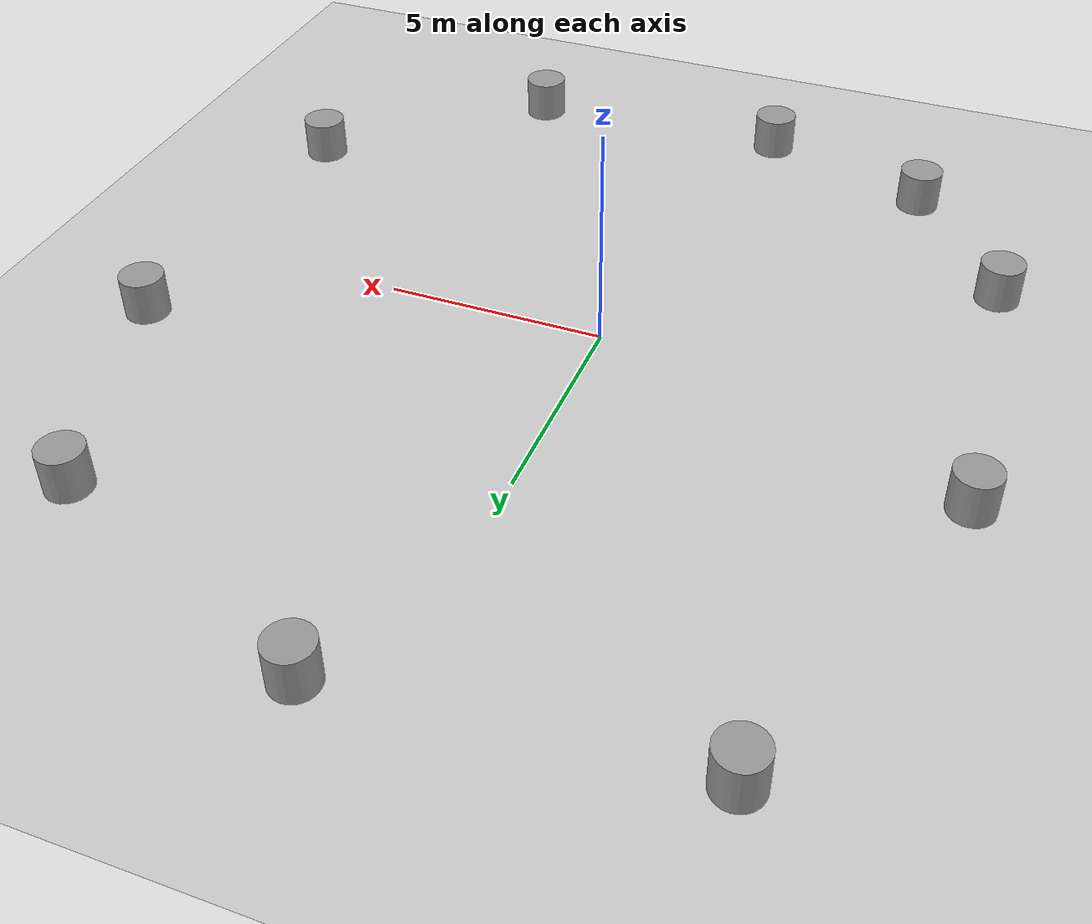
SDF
<sdf version="1.7">
 <world name="default">
  <light name="sun" type="directional">
   <pose>0 0 10 0 -0 0</pose>
   <diffuse>0.8 0.8 0.8 1</diffuse>
   <specular>0.2 0.2 0.2 1</specular>
   <attenuation>
    <range>1000</range>
    <constant>0.9</constant>
    <linear>0.01</linear>
    <quadratic>0.001</quadratic>
   </attenuation>
   <direction>-0.5 0.1 -0.9</direction>
   <spot><inner_angle>0</inner_angle><outer_angle>0</outer_angle><falloff>0</falloff></spot>
  </light>
  <model name="ground_plane">
   <static>1</static>
   <link name="link">
    <collision name="collision">
     <geometry><plane><normal>0 0 1</normal><size>100 100</size></plane></geometry>
     <surface><friction><ode><mu>100</mu><mu2>50</mu2></ode></friction></surface>
    </collision>
    <visual name="visual">
     <cast_shadows>0</cast_shadows>
     <geometry><plane><normal>0 0 1</normal><size>100 100</size></plane></geometry>
     <material>
      <script><uri>file://media/materials/scripts/gazebo.material</uri><name>Gazebo/Grey</name></script>
     </material>
    </visual>
   </link>
  </model>
  <gravity>0 0 -9.8</gravity>
  <magnetic_field>6e-06 2.3e-05 -4.2e-05</magnetic_field>
  <atmosphere type="adiabatic"/>
  <physics type="ode">
   <max_step_size>0.001</max_step_size>
   <real_time_factor>1</real_time_factor>
   <real_time_update_rate>1000</real_time_update_rate>
  </physics>
  <scene><ambient>0.4 0.4 0.4 1</ambient><background>0.7 0.7 0.7 1</background><shadows>1</shadows></scene>
  <spherical_coordinates>
   <surface_model>EARTH_WGS84</surface_model>
   <latitude_deg>0</latitude_deg>
   <longitude_deg>0</longitude_deg>
   <elevation>0</elevation>
   <heading_deg>0</heading_deg>
  </spherical_coordinates>
  <model name="model1.10">
   <link name="link_20">
    <inertial>
     <mass>1</mass>
     <inertia><ixx>0.145833</ixx><ixy>0</ixy><ixz>0</ixz><iyy>0.145833</iyy><iyz>0</iyz><izz>0.125</izz></inertia>
    </inertial>
    <pose>0.435626 9.57933 10 0 -0 0</pose>
    <visual name="visual">
     <geometry><cylinder><radius>0.5</radius><length>1</length></cylinder></geometry>
     <material>
      <lighting>1</lighting>
      <script><uri>file://media/materials/scripts/gazebo.material</uri><name>Gazebo/Grey</name></script>
      <shader type="pixel"><normal_map>__default__</normal_map></shader>
      <ambient>0.3 0.3 0.3 1</ambient>
      <diffuse>0.7 0.7 0.7 1</diffuse>
      <specular>0.01 0.01 0.01 1</specular>
      <emissive>0 0 0 1</emissive>
     </material>
    </visual>
    <collision name="collision">
     <geometry><cylinder><radius>0.5</radius><length>1</length></cylinder></geometry>
     <surface>
      <friction>
       <ode><mu>1</mu><mu2>1</mu2><fdir1>0 0 0</fdir1><slip1>0</slip1><slip2>0</slip2></ode>
       <torsional>
        <coefficient>1</coefficient>
        <patch_radius>0</patch_radius>
        <surface_radius>0</surface_radius>
        <use_patch_radius>1</use_patch_radius>
        <ode><slip>0</slip></ode>
       </torsional>
      </friction>
      <bounce><restitution_coefficient>0</restitution_coefficient><threshold>1e+06</threshold></bounce>
      <contact>
       <collide_without_contact>0</collide_without_contact>
       <collide_without_contact_bitmask>1</collide_without_contact_bitmask>
       <collide_bitmask>1</collide_bitmask>
       <ode>
        <soft_cfm>0</soft_cfm>
        <soft_erp>0.2</soft_erp>
        <kp>1e+13</kp>
        <kd>1</kd>
        <max_vel>0.01</max_vel>
        <min_depth>0</min_depth>
       </ode>
       <bullet>
        <split_impulse>1</split_impulse>
        <split_impulse_penetration_threshold>-0.01</split_impulse_penetration_threshold>
        <soft_cfm>0</soft_cfm>
        <soft_erp>0.2</soft_erp>
        <kp>1e+13</kp>
        <kd>1</kd>
       </bullet>
      </contact>
     </surface>
    </collision>
   </link>
   <static>0</static>
   <pose>1.10007 1.11692 -9.5 -0 -0 -0</pose>
  </model>
  <model name="model1.2">
   <link name="link_3">
    <inertial>
     <mass>1</mass>
     <inertia><ixx>0.145833</ixx><ixy>0</ixy><ixz>0</ixz><iyy>0.145833</iyy><iyz>0</iyz><izz>0.125</izz></inertia>
    </inertial>
    <pose>-6.66073 5.93432 10 0 -0 0</pose>
    <visual name="visual">
     <geometry><cylinder><radius>0.5</radius><length>1</length></cylinder></geometry>
     <material>
      <lighting>1</lighting>
      <script><uri>file://media/materials/scripts/gazebo.material</uri><name>Gazebo/Grey</name></script>
      <shader type="pixel"><normal_map>__default__</normal_map></shader>
      <ambient>0.3 0.3 0.3 1</ambient>
      <diffuse>0.7 0.7 0.7 1</diffuse>
      <specular>0.01 0.01 0.01 1</specular>
      <emissive>0 0 0 1</emissive>
     </material>
    </visual>
    <collision name="collision">
     <geometry><cylinder><radius>0.5</radius><length>1</length></cylinder></geometry>
     <surface>
      <friction>
       <ode><mu>1</mu><mu2>1</mu2><fdir1>0 0 0</fdir1><slip1>0</slip1><slip2>0</slip2></ode>
       <torsional>
        <coefficient>1</coefficient>
        <patch_radius>0</patch_radius>
        <surface_radius>0</surface_radius>
        <use_patch_radius>1</use_patch_radius>
        <ode><slip>0</slip></ode>
       </torsional>
      </friction>
      <bounce><restitution_coefficient>0</restitution_coefficient><threshold>1e+06</threshold></bounce>
      <contact>
       <collide_without_contact>0</collide_without_contact>
       <collide_without_contact_bitmask>1</collide_without_contact_bitmask>
       <collide_bitmask>1</collide_bitmask>
       <ode>
        <soft_cfm>0</soft_cfm>
        <soft_erp>0.2</soft_erp>
        <kp>1e+13</kp>
        <kd>1</kd>
        <max_vel>0.01</max_vel>
        <min_depth>0</min_depth>
       </ode>
       <bullet>
        <split_impulse>1</split_impulse>
        <split_impulse_penetration_threshold>-0.01</split_impulse_penetration_threshold>
        <soft_cfm>0</soft_cfm>
        <soft_erp>0.2</soft_erp>
        <kp>1e+13</kp>
        <kd>1</kd>
       </bullet>
      </contact>
     </surface>
    </collision>
   </link>
   <static>0</static>
   <pose>0.716648 4.12376 -9.5 -0 -0 -0</pose>
  </model>
  <model name="model1.22">
   <link name="link_29">
    <inertial>
     <mass>1</mass>
     <inertia><ixx>0.145833</ixx><ixy>0</ixy><ixz>0</ixz><iyy>0.145833</iyy><iyz>0</iyz><izz>0.125</izz></inertia>
    </inertial>
    <pose>0.309396 -0.028527 10 0 -0 0</pose>
    <visual name="visual">
     <geometry><cylinder><radius>0.5</radius><length>1</length></cylinder></geometry>
     <material>
      <lighting>1</lighting>
      <script><uri>file://media/materials/scripts/gazebo.material</uri><name>Gazebo/Grey</name></script>
      <shader type="pixel"><normal_map>__default__</normal_map></shader>
      <ambient>0.3 0.3 0.3 1</ambient>
      <diffuse>0.7 0.7 0.7 1</diffuse>
      <specular>0.01 0.01 0.01 1</specular>
      <emissive>0 0 0 1</emissive>
     </material>
    </visual>
    <collision name="collision">
     <geometry><cylinder><radius>0.5</radius><length>1</length></cylinder></geometry>
     <surface>
      <friction>
       <ode><mu>1</mu><mu2>1</mu2><fdir1>0 0 0</fdir1><slip1>0</slip1><slip2>0</slip2></ode>
       <torsional>
        <coefficient>1</coefficient>
        <patch_radius>0</patch_radius>
        <surface_radius>0</surface_radius>
        <use_patch_radius>1</use_patch_radius>
        <ode><slip>0</slip></ode>
       </torsional>
      </friction>
      <bounce><restitution_coefficient>0</restitution_coefficient><threshold>1e+06</threshold></bounce>
      <contact>
       <collide_without_contact>0</collide_without_contact>
       <collide_without_contact_bitmask>1</collide_without_contact_bitmask>
       <collide_bitmask>1</collide_bitmask>
       <ode>
        <soft_cfm>0</soft_cfm>
        <soft_erp>0.2</soft_erp>
        <kp>1e+13</kp>
        <kd>1</kd>
        <max_vel>0.01</max_vel>
        <min_depth>0</min_depth>
       </ode>
       <bullet>
        <split_impulse>1</split_impulse>
        <split_impulse_penetration_threshold>-0.01</split_impulse_penetration_threshold>
        <soft_cfm>0</soft_cfm>
        <soft_erp>0.2</soft_erp>
        <kp>1e+13</kp>
        <kd>1</kd>
       </bullet>
      </contact>
     </surface>
    </collision>
   </link>
   <static>0</static>
   <pose>-8.70688 2.56933 -9.5 -0 -0 -0</pose>
  </model>
  <model name="model1.3">
   <link name="link_5">
    <inertial>
     <mass>1</mass>
     <inertia><ixx>0.145833</ixx><ixy>0</ixy><ixz>0</ixz><iyy>0.145833</iyy><iyz>0</iyz><izz>0.125</izz></inertia>
    </inertial>
    <pose>-0.785474 -4.3424 10 0 -0 0</pose>
    <visual name="visual">
     <geometry><cylinder><radius>0.5</radius><length>1</length></cylinder></geometry>
     <material>
      <lighting>1</lighting>
      <script><uri>file://media/materials/scripts/gazebo.material</uri><name>Gazebo/Grey</name></script>
      <shader type="pixel"><normal_map>__default__</normal_map></shader>
      <ambient>0.3 0.3 0.3 1</ambient>
      <diffuse>0.7 0.7 0.7 1</diffuse>
      <specular>0.01 0.01 0.01 1</specular>
      <emissive>0 0 0 1</emissive>
     </material>
    </visual>
    <collision name="collision">
     <geometry><cylinder><radius>0.5</radius><length>1</length></cylinder></geometry>
     <surface>
      <friction>
       <ode><mu>1</mu><mu2>1</mu2><fdir1>0 0 0</fdir1><slip1>0</slip1><slip2>0</slip2></ode>
       <torsional>
        <coefficient>1</coefficient>
        <patch_radius>0</patch_radius>
        <surface_radius>0</surface_radius>
        <use_patch_radius>1</use_patch_radius>
        <ode><slip>0</slip></ode>
       </torsional>
      </friction>
      <bounce><restitution_coefficient>0</restitution_coefficient><threshold>1e+06</threshold></bounce>
      <contact>
       <collide_without_contact>0</collide_without_contact>
       <collide_without_contact_bitmask>1</collide_without_contact_bitmask>
       <collide_bitmask>1</collide_bitmask>
       <ode>
        <soft_cfm>0</soft_cfm>
        <soft_erp>0.2</soft_erp>
        <kp>1e+13</kp>
        <kd>1</kd>
        <max_vel>0.01</max_vel>
        <min_depth>0</min_depth>
       </ode>
       <bullet>
        <split_impulse>1</split_impulse>
        <split_impulse_penetration_threshold>-0.01</split_impulse_penetration_threshold>
        <soft_cfm>0</soft_cfm>
        <soft_erp>0.2</soft_erp>
        <kp>1e+13</kp>
        <kd>1</kd>
       </bullet>
      </contact>
     </surface>
    </collision>
   </link>
   <static>0</static>
   <pose>-7.11667 -0.203762 -9.5 -0 -0 -0</pose>
  </model>
  <model name="model1.4">
   <link name="link_6">
    <inertial>
     <mass>1</mass>
     <inertia><ixx>0.145833</ixx><ixy>0</ixy><ixz>0</ixz><iyy>0.145833</iyy><iyz>0</iyz><izz>0.125</izz></inertia>
    </inertial>
    <pose>-7.40388 0.395252 10 0 -0 0</pose>
    <visual name="visual">
     <geometry><cylinder><radius>0.5</radius><length>1</length></cylinder></geometry>
     <material>
      <lighting>1</lighting>
      <script><uri>file://media/materials/scripts/gazebo.material</uri><name>Gazebo/Grey</name></script>
      <shader type="pixel"><normal_map>__default__</normal_map></shader>
      <ambient>0.3 0.3 0.3 1</ambient>
      <diffuse>0.7 0.7 0.7 1</diffuse>
      <specular>0.01 0.01 0.01 1</specular>
      <emissive>0 0 0 1</emissive>
     </material>
    </visual>
    <collision name="collision">
     <geometry><cylinder><radius>0.5</radius><length>1</length></cylinder></geometry>
     <surface>
      <friction>
       <ode><mu>1</mu><mu2>1</mu2><fdir1>0 0 0</fdir1><slip1>0</slip1><slip2>0</slip2></ode>
       <torsional>
        <coefficient>1</coefficient>
        <patch_radius>0</patch_radius>
        <surface_radius>0</surface_radius>
        <use_patch_radius>1</use_patch_radius>
        <ode><slip>0</slip></ode>
       </torsional>
      </friction>
      <bounce><restitution_coefficient>0</restitution_coefficient><threshold>1e+06</threshold></bounce>
      <contact>
       <collide_without_contact>0</collide_without_contact>
       <collide_without_contact_bitmask>1</collide_without_contact_bitmask>
       <collide_bitmask>1</collide_bitmask>
       <ode>
        <soft_cfm>0</soft_cfm>
        <soft_erp>0.2</soft_erp>
        <kp>1e+13</kp>
        <kd>1</kd>
        <max_vel>0.01</max_vel>
        <min_depth>0</min_depth>
       </ode>
       <bullet>
        <split_impulse>1</split_impulse>
        <split_impulse_penetration_threshold>-0.01</split_impulse_penetration_threshold>
        <soft_cfm>0</soft_cfm>
        <soft_erp>0.2</soft_erp>
        <kp>1e+13</kp>
        <kd>1</kd>
       </bullet>
      </contact>
     </surface>
    </collision>
   </link>
   <static>0</static>
   <pose>5.94318 -9.73563 -9.5 -0 -0 -0</pose>
  </model>
  <model name="model1.5">
   <link name="link_8">
    <inertial>
     <mass>1</mass>
     <inertia><ixx>0.145833</ixx><ixy>0</ixy><ixz>0</ixz><iyy>0.145833</iyy><iyz>0</iyz><izz>0.125</izz></inertia>
    </inertial>
    <pose>1.36267 -9.62951 10 0 -0 0</pose>
    <visual name="visual">
     <geometry><cylinder><radius>0.5</radius><length>1</length></cylinder></geometry>
     <material>
      <lighting>1</lighting>
      <script><uri>file://media/materials/scripts/gazebo.material</uri><name>Gazebo/Grey</name></script>
      <shader type="pixel"><normal_map>__default__</normal_map></shader>
      <ambient>0.3 0.3 0.3 1</ambient>
      <diffuse>0.7 0.7 0.7 1</diffuse>
      <specular>0.01 0.01 0.01 1</specular>
      <emissive>0 0 0 1</emissive>
     </material>
    </visual>
    <collision name="collision">
     <geometry><cylinder><radius>0.5</radius><length>1</length></cylinder></geometry>
     <surface>
      <friction>
       <ode><mu>1</mu><mu2>1</mu2><fdir1>0 0 0</fdir1><slip1>0</slip1><slip2>0</slip2></ode>
       <torsional>
        <coefficient>1</coefficient>
        <patch_radius>0</patch_radius>
        <surface_radius>0</surface_radius>
        <use_patch_radius>1</use_patch_radius>
        <ode><slip>0</slip></ode>
       </torsional>
      </friction>
      <bounce><restitution_coefficient>0</restitution_coefficient><threshold>1e+06</threshold></bounce>
      <contact>
       <collide_without_contact>0</collide_without_contact>
       <collide_without_contact_bitmask>1</collide_without_contact_bitmask>
       <collide_bitmask>1</collide_bitmask>
       <ode>
        <soft_cfm>0</soft_cfm>
        <soft_erp>0.2</soft_erp>
        <kp>1e+13</kp>
        <kd>1</kd>
        <max_vel>0.01</max_vel>
        <min_depth>0</min_depth>
       </ode>
       <bullet>
        <split_impulse>1</split_impulse>
        <split_impulse_penetration_threshold>-0.01</split_impulse_penetration_threshold>
        <soft_cfm>0</soft_cfm>
        <soft_erp>0.2</soft_erp>
        <kp>1e+13</kp>
        <kd>1</kd>
       </bullet>
      </contact>
     </surface>
    </collision>
   </link>
   <static>0</static>
   <pose>3.50556 0.538179 -9.5 -0 -0 -0</pose>
  </model>
  <model name="model1.6">
   <link name="link_9">
    <inertial>
     <mass>1</mass>
     <inertia><ixx>0.145833</ixx><ixy>0</ixy><ixz>0</ixz><iyy>0.145833</iyy><iyz>0</iyz><izz>0.125</izz></inertia>
    </inertial>
    <pose>-2.64628 -0.645935 10 0 -0 0</pose>
    <visual name="visual">
     <geometry><cylinder><radius>0.5</radius><length>1</length></cylinder></geometry>
     <material>
      <lighting>1</lighting>
      <script><uri>file://media/materials/scripts/gazebo.material</uri><name>Gazebo/Grey</name></script>
      <shader type="pixel"><normal_map>__default__</normal_map></shader>
      <ambient>0.3 0.3 0.3 1</ambient>
      <diffuse>0.7 0.7 0.7 1</diffuse>
      <specular>0.01 0.01 0.01 1</specular>
      <emissive>0 0 0 1</emissive>
     </material>
    </visual>
    <collision name="collision">
     <geometry><cylinder><radius>0.5</radius><length>1</length></cylinder></geometry>
     <surface>
      <friction>
       <ode><mu>1</mu><mu2>1</mu2><fdir1>0 0 0</fdir1><slip1>0</slip1><slip2>0</slip2></ode>
       <torsional>
        <coefficient>1</coefficient>
        <patch_radius>0</patch_radius>
        <surface_radius>0</surface_radius>
        <use_patch_radius>1</use_patch_radius>
        <ode><slip>0</slip></ode>
       </torsional>
      </friction>
      <bounce><restitution_coefficient>0</restitution_coefficient><threshold>1e+06</threshold></bounce>
      <contact>
       <collide_without_contact>0</collide_without_contact>
       <collide_without_contact_bitmask>1</collide_without_contact_bitmask>
       <collide_bitmask>1</collide_bitmask>
       <ode>
        <soft_cfm>0</soft_cfm>
        <soft_erp>0.2</soft_erp>
        <kp>1e+13</kp>
        <kd>1</kd>
        <max_vel>0.01</max_vel>
        <min_depth>0</min_depth>
       </ode>
       <bullet>
        <split_impulse>1</split_impulse>
        <split_impulse_penetration_threshold>-0.01</split_impulse_penetration_threshold>
        <soft_cfm>0</soft_cfm>
        <soft_erp>0.2</soft_erp>
        <kp>1e+13</kp>
        <kd>1</kd>
       </bullet>
      </contact>
     </surface>
    </collision>
   </link>
   <static>0</static>
   <pose>12.0654 -4.3287 -9.5 -0 -0 -0</pose>
  </model>
  <model name="model1.7">
   <link name="link_11">
    <inertial>
     <mass>1</mass>
     <inertia><ixx>0.145833</ixx><ixy>0</ixy><ixz>0</ixz><iyy>0.145833</iyy><iyz>0</iyz><izz>0.125</izz></inertia>
    </inertial>
    <pose>7.93818 -7.68719 10 0 -0 0</pose>
    <visual name="visual">
     <geometry><cylinder><radius>0.5</radius><length>1</length></cylinder></geometry>
     <material>
      <lighting>1</lighting>
      <script><uri>file://media/materials/scripts/gazebo.material</uri><name>Gazebo/Grey</name></script>
      <shader type="pixel"><normal_map>__default__</normal_map></shader>
      <ambient>0.3 0.3 0.3 1</ambient>
      <diffuse>0.7 0.7 0.7 1</diffuse>
      <specular>0.01 0.01 0.01 1</specular>
      <emissive>0 0 0 1</emissive>
     </material>
    </visual>
    <collision name="collision">
     <geometry><cylinder><radius>0.5</radius><length>1</length></cylinder></geometry>
     <surface>
      <friction>
       <ode><mu>1</mu><mu2>1</mu2><fdir1>0 0 0</fdir1><slip1>0</slip1><slip2>0</slip2></ode>
       <torsional>
        <coefficient>1</coefficient>
        <patch_radius>0</patch_radius>
        <surface_radius>0</surface_radius>
        <use_patch_radius>1</use_patch_radius>
        <ode><slip>0</slip></ode>
       </torsional>
      </friction>
      <bounce><restitution_coefficient>0</restitution_coefficient><threshold>1e+06</threshold></bounce>
      <contact>
       <collide_without_contact>0</collide_without_contact>
       <collide_without_contact_bitmask>1</collide_without_contact_bitmask>
       <collide_bitmask>1</collide_bitmask>
       <ode>
        <soft_cfm>0</soft_cfm>
        <soft_erp>0.2</soft_erp>
        <kp>1e+13</kp>
        <kd>1</kd>
        <max_vel>0.01</max_vel>
        <min_depth>0</min_depth>
       </ode>
       <bullet>
        <split_impulse>1</split_impulse>
        <split_impulse_penetration_threshold>-0.01</split_impulse_penetration_threshold>
        <soft_cfm>0</soft_cfm>
        <soft_erp>0.2</soft_erp>
        <kp>1e+13</kp>
        <kd>1</kd>
       </bullet>
      </contact>
     </surface>
    </collision>
   </link>
   <static>0</static>
   <pose>1.85444 10.38 -9.5 -0 -0 -0</pose>
  </model>
  <model name="model1.8">
   <link name="link_12">
    <inertial>
     <mass>1</mass>
     <inertia><ixx>0.145833</ixx><ixy>0</ixy><ixz>0</ixz><iyy>0.145833</iyy><iyz>0</iyz><izz>0.125</izz></inertia>
    </inertial>
    <pose>1.76946 -1.39073 10 0 -0 0</pose>
    <visual name="visual">
     <geometry><cylinder><radius>0.5</radius><length>1</length></cylinder></geometry>
     <material>
      <lighting>1</lighting>
      <script><uri>file://media/materials/scripts/gazebo.material</uri><name>Gazebo/Grey</name></script>
      <shader type="pixel"><normal_map>__default__</normal_map></shader>
      <ambient>0.3 0.3 0.3 1</ambient>
      <diffuse>0.7 0.7 0.7 1</diffuse>
      <specular>0.01 0.01 0.01 1</specular>
      <emissive>0 0 0 1</emissive>
     </material>
    </visual>
    <collision name="collision">
     <geometry><cylinder><radius>0.5</radius><length>1</length></cylinder></geometry>
     <surface>
      <friction>
       <ode><mu>1</mu><mu2>1</mu2><fdir1>0 0 0</fdir1><slip1>0</slip1><slip2>0</slip2></ode>
       <torsional>
        <coefficient>1</coefficient>
        <patch_radius>0</patch_radius>
        <surface_radius>0</surface_radius>
        <use_patch_radius>1</use_patch_radius>
        <ode><slip>0</slip></ode>
       </torsional>
      </friction>
      <bounce><restitution_coefficient>0</restitution_coefficient><threshold>1e+06</threshold></bounce>
      <contact>
       <collide_without_contact>0</collide_without_contact>
       <collide_without_contact_bitmask>1</collide_without_contact_bitmask>
       <collide_bitmask>1</collide_bitmask>
       <ode>
        <soft_cfm>0</soft_cfm>
        <soft_erp>0.2</soft_erp>
        <kp>1e+13</kp>
        <kd>1</kd>
        <max_vel>0.01</max_vel>
        <min_depth>0</min_depth>
       </ode>
       <bullet>
        <split_impulse>1</split_impulse>
        <split_impulse_penetration_threshold>-0.01</split_impulse_penetration_threshold>
        <soft_cfm>0</soft_cfm>
        <soft_erp>0.2</soft_erp>
        <kp>1e+13</kp>
        <kd>1</kd>
       </bullet>
      </contact>
     </surface>
    </collision>
   </link>
   <static>0</static>
   <pose>6.17913 9.47993 -9.5 -0 -0 -0</pose>
  </model>
  <model name="model1.9">
   <link name="link_13">
    <inertial>
     <mass>1</mass>
     <inertia><ixx>0.145833</ixx><ixy>0</ixy><ixz>0</ixz><iyy>0.145833</iyy><iyz>0</iyz><izz>0.125</izz></inertia>
    </inertial>
    <pose>8.49108 0.547176 10 0 -0 0</pose>
    <visual name="visual">
     <geometry><cylinder><radius>0.5</radius><length>1</length></cylinder></geometry>
     <material>
      <lighting>1</lighting>
      <script><uri>file://media/materials/scripts/gazebo.material</uri><name>Gazebo/Grey</name></script>
      <shader type="pixel"><normal_map>__default__</normal_map></shader>
     </material>
    </visual>
    <collision name="collision">
     <geometry><cylinder><radius>0.5</radius><length>1</length></cylinder></geometry>
     <surface>
      <friction>
       <ode><mu>1</mu><mu2>1</mu2><fdir1>0 0 0</fdir1><slip1>0</slip1><slip2>0</slip2></ode>
       <torsional>
        <coefficient>1</coefficient>
        <patch_radius>0</patch_radius>
        <surface_radius>0</surface_radius>
        <use_patch_radius>1</use_patch_radius>
        <ode><slip>0</slip></ode>
       </torsional>
      </friction>
      <bounce><restitution_coefficient>0</restitution_coefficient><threshold>1e+06</threshold></bounce>
      <contact>
       <collide_without_contact>0</collide_without_contact>
       <collide_without_contact_bitmask>1</collide_without_contact_bitmask>
       <collide_bitmask>1</collide_bitmask>
       <ode>
        <soft_cfm>0</soft_cfm>
        <soft_erp>0.2</soft_erp>
        <kp>1e+13</kp>
        <kd>1</kd>
        <max_vel>0.01</max_vel>
        <min_depth>0</min_depth>
       </ode>
       <bullet>
        <split_impulse>1</split_impulse>
        <split_impulse_penetration_threshold>-0.01</split_impulse_penetration_threshold>
        <soft_cfm>0</soft_cfm>
        <soft_erp>0.2</soft_erp>
        <kp>1e+13</kp>
        <kd>1</kd>
       </bullet>
      </contact>
     </surface>
    </collision>
   </link>
   <static>0</static>
   <pose>-13.9822 -8.45714 -9.5 -0 -0 -0</pose>
  </model>
 </world>
</sdf>
